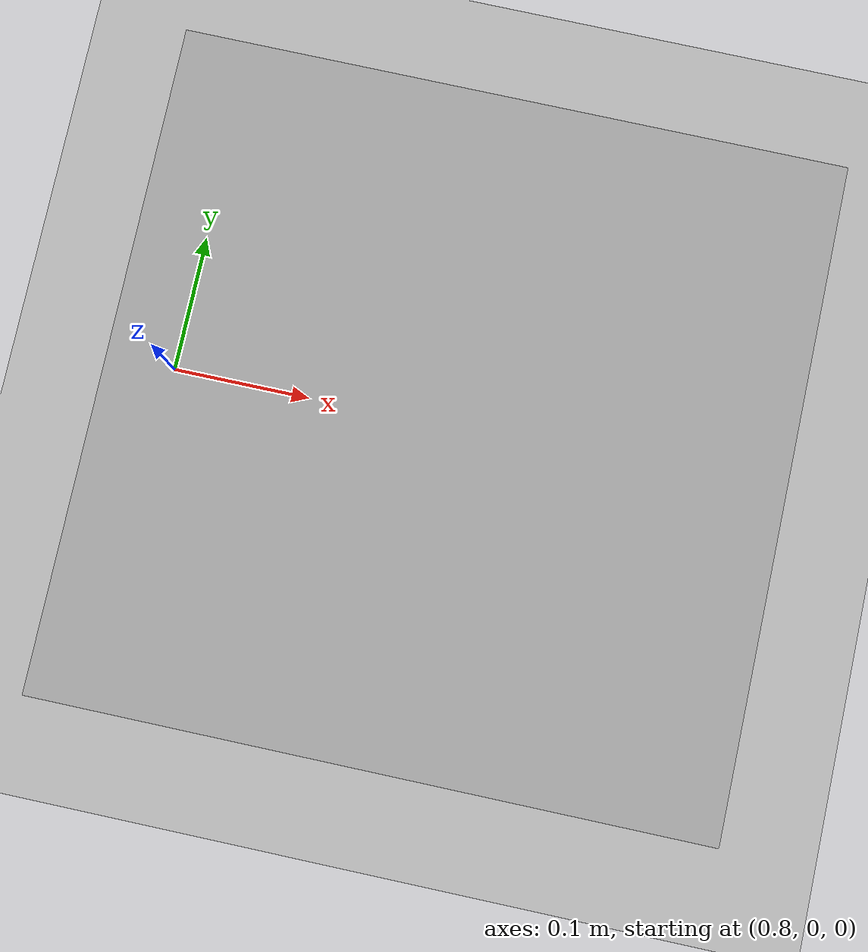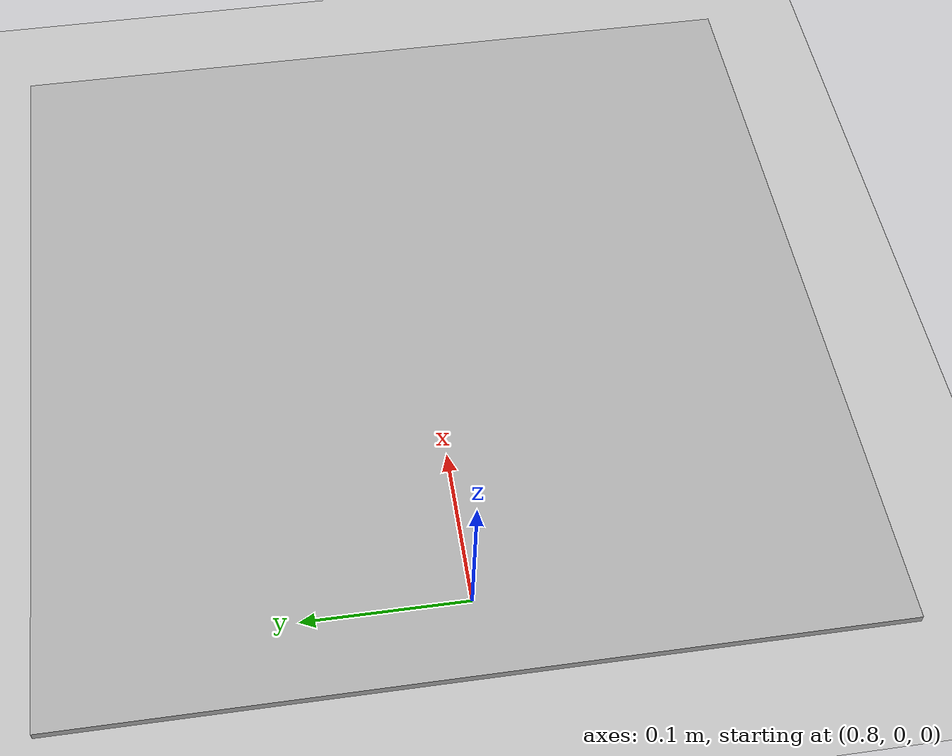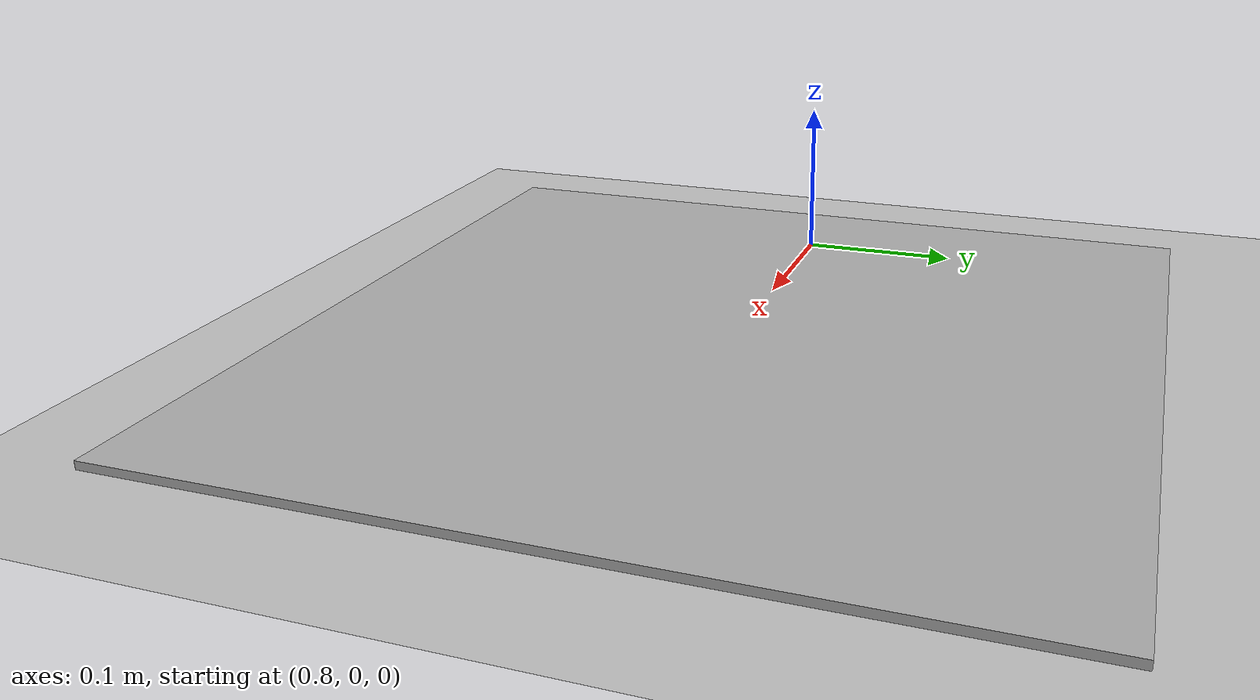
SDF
<?xml version="1.0" ?>
<sdf version="1.4">
  <!-- We use a custom world for the rrbot so that the camera angle is launched correctly -->

  <world name="default">

  <model name="mygroundplane">
    <static>true</static>
    <link name="link">
      <collision name="collision">
        <geometry>
          <plane>
            <normal>0 0 1</normal>
            <size>22 22</size>
          </plane>
        </geometry>
        <surface>
          <friction>
            <ode>
              <mu>100</mu>
              <mu2>50</mu2>
            </ode>
          </friction>
        </surface>
      </collision>
      <visual name="visual">
        <cast_shadows>false</cast_shadows>
        <geometry>
          <plane>
            <normal>0 0 1</normal>
            <size>22 22</size>
          </plane>
        </geometry>
        <material>
          <script>
            <uri>model://mygroundplane/materials/scripts</uri>
            <uri>model://mygroundplane/materials/textures</uri>
            <name>GrassPlane/Image</name>
          </script>
        </material>
      </visual>
    </link>
  </model>

    <include>
      <uri>model://chessboard</uri>
    </include>

    <!-- Global light source -->
    <include>
      <uri>model://sun</uri>
    </include>

    <!-- Focus camera on tall pendulum -->
    <gui fullscreen='0'>
      <camera name='user_camera'>
        <pose>4.927360 -4.376610 3.740080 0.000000 0.275643 2.356190</pose>
        <view_controller>orbit</view_controller>
      </camera>
    </gui>

  </world>
</sdf>

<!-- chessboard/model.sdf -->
<sdf version="1.4">
<model name="chessboard">
  <static>true</static>
    <link name="chessboard_link">
      <pose>1 0 0.005 0 0 0</pose>
      <collision name="collision">
        <geometry>
          <box>
            <normal>0 0 1</normal>
            <size>0.5 0.5 0.005</size>
          </box>
        </geometry>
        <surface>
          <friction>
            <ode>
              <mu>100</mu>
              <mu2>50</mu2>
            </ode>
          </friction>
        </surface>
      </collision>
      <visual name="chessboard_visual">
        <cast_shadows>true</cast_shadows>
        <geometry>
          <box>
            <normal>0 0 1</normal>
            <size>0.5 0.5 0.005</size>
          </box>
        </geometry>
        <material>
          <script>
            <uri>model://chessboard/materials/scripts</uri>
            <uri>model://chessboard/materials/textures</uri>
            <name>chessboard/Image</name>
          </script>
        </material>
      </visual>
    </link>
  </model>
</sdf>
